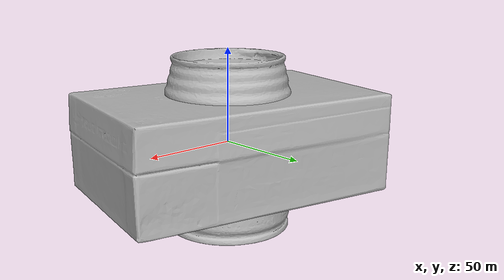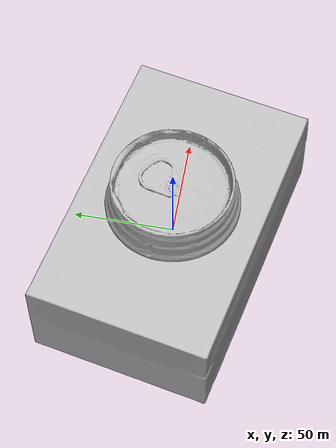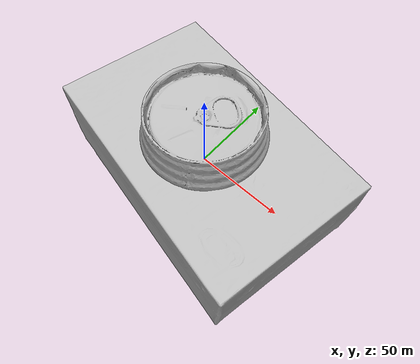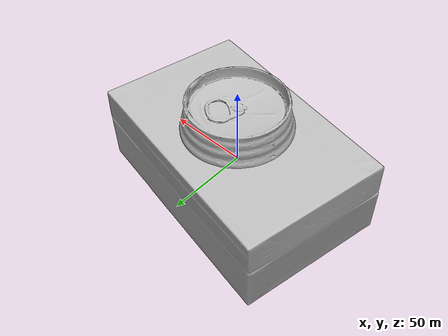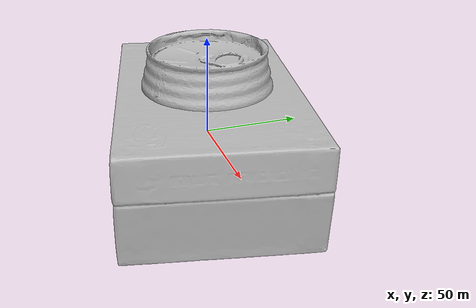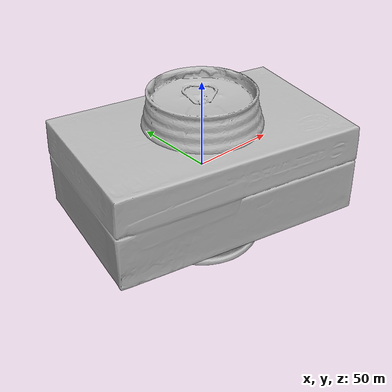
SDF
<?xml version="1.0" ?>
<sdf version="1.4">
  <world name="default">
    <light name="light1" type="point">
      <pose>0 0 1 0 0 0</pose>
      <diffuse>3 3 3 1</diffuse>
      <specular>3 3 3 1</specular>
    </light>
    <light name="light2" type="point">
      <pose>0 0.5 2 0 0 0</pose>
      <diffuse>1 1 1 1</diffuse>
      <specular>1 1 1 1</specular>
    </light>
    <light name="light3" type="point">
      <pose>0 0.5 2 0 0 0</pose>
      <diffuse>3 3 3 1</diffuse>
      <specular>3 3 3 1</specular>
    </light>
    <scene>
      <ambient>0.7 0.7 0.7</ambient>
    </scene>
    <model name="box1">
      <link name="link_box1">
        <collision name="default">
          <geometry>
            <mesh>
              <uri>model://realsense_box/collision_meshes/collision.obj</uri>
              <scale>1.0 1.0 1.0</scale>
            </mesh>
          </geometry>
          <surface>
            <friction>
              <ode>
                <mu>0.5</mu>
                <mu2>0.5</mu2>
              </ode>
            </friction>
            <contact>
              <ode>
                <max_vel>0</max_vel>
                <min_depth>0.0001</min_depth>
                <kp>1e8</kp>
              </ode>
            </contact>
          </surface>
        </collision>
        <visual name="default">
          <geometry>
            <mesh>
              <uri>model://realsense_box/visual_meshes/visual.dae</uri>
              <scale>1.0 1.0 1.0</scale>
            </mesh>
          </geometry>
        </visual>
        <inertial>
          <mass>0.5864310264587402</mass>
          <pose>4.0744838770478964e-05 8.587492629885674e-05 -2.4153792764991522e-05 -0.00012602841398420584 -0.00635893997803049 0.005012323893530406</pose>
          <inertia>
            <ixx>0.00055784633</ixx>
            <iyy>0.0011643406</iyy>
            <izz>0.0014403972</izz>
            <ixy>0</ixy>
            <ixz>0</ixz>
            <iyz>0</iyz>
          </inertia>
        </inertial>
      </link>
      <pose>-0.01939862035214901 0.2791391909122467 0.027316005900502205 -4.978277208081063e-08 -5.747913025883684e-09 2.9302754133178963</pose>
    </model>
    <model name="box2">
      <link name="link_box2">
        <collision name="default">
          <geometry>
            <mesh>
              <uri>model://wooden_puzzle1/collision_meshes/collision.obj</uri>
              <scale>1.0 1.0 1.0</scale>
            </mesh>
          </geometry>
          <surface>
            <friction>
              <ode>
                <mu>0.5</mu>
                <mu2>0.5</mu2>
              </ode>
            </friction>
            <contact>
              <ode>
                <max_vel>0</max_vel>
                <min_depth>0.0001</min_depth>
                <kp>1e8</kp>
              </ode>
            </contact>
          </surface>
        </collision>
        <visual name="default">
          <geometry>
            <mesh>
              <uri>model://wooden_puzzle1/visual_meshes/visual.dae</uri>
              <scale>1.0 1.0 1.0</scale>
            </mesh>
          </geometry>
        </visual>
        <inertial>
          <mass>0.029293930158019066</mass>
          <pose>-0.00017350679263472557 7.972260209498927e-05 -9.191554272547364e-05 -0.07784356807478612 -0.26361316070226715 -0.552870069934309</pose>
          <inertia>
            <ixx>5.5269634e-06</ixx>
            <iyy>5.4205675e-06</iyy>
            <izz>5.4852344e-06</izz>
            <ixy>0</ixy>
            <ixz>0</ixz>
            <iyz>0</iyz>
          </inertia>
        </inertial>
      </link>
      <pose>-0.06030524894595146 -0.06354563683271408 0.016802016645669937 0.010512811085048144 -0.00944929874340968 2.3901217037040037</pose>
    </model>
    <model name="box3">
      <link name="link_box3">
        <collision name="default">
          <geometry>
            <mesh>
              <uri>model://wooden_puzzle2/collision_meshes/collision.obj</uri>
              <scale>1.0 1.0 1.0</scale>
            </mesh>
          </geometry>
          <surface>
            <friction>
              <ode>
                <mu>0.5</mu>
                <mu2>0.5</mu2>
              </ode>
            </friction>
            <contact>
              <ode>
                <max_vel>0</max_vel>
                <min_depth>0.0001</min_depth>
                <kp>1e8</kp>
              </ode>
            </contact>
          </surface>
        </collision>
        <visual name="default">
          <geometry>
            <mesh>
              <uri>model://wooden_puzzle2/visual_meshes/visual.dae</uri>
              <scale>1.0 1.0 1.0</scale>
            </mesh>
          </geometry>
        </visual>
        <inertial>
          <mass>0.046210821717977524</mass>
          <pose>2.7402538762544282e-05 4.9976635636994615e-05 6.587122334167361e-05 -0.19202726218652877 0.6112834530151037 -0.6338736448019666</pose>
          <inertia>
            <ixx>8.590097e-06</ixx>
            <iyy>8.826809e-06</iyy>
            <izz>8.7012395e-06</izz>
            <ixy>0</ixy>
            <ixz>0</ixz>
            <iyz>0</iyz>
          </inertia>
        </inertial>
      </link>
      <pose>-0.048972416669130325 0.020938735455274582 0.016917727887630463 0.020847727172185783 0.0007220935449440105 -0.12661263760894825</pose>
    </model>
    <model name="can1">
      <link name="link_can1">
        <collision name="default">
          <geometry>
            <mesh>
              <uri>model://pepsi/collision_meshes/collision.obj</uri>
              <scale>1.0 1.0 1.0</scale>
            </mesh>
          </geometry>
          <surface>
            <friction>
              <ode>
                <mu>0.5</mu>
                <mu2>0.5</mu2>
              </ode>
            </friction>
            <contact>
              <ode>
                <max_vel>0</max_vel>
                <min_depth>0.0001</min_depth>
                <kp>1e8</kp>
              </ode>
            </contact>
          </surface>
        </collision>
        <visual name="default">
          <geometry>
            <mesh>
              <uri>model://pepsi/visual_meshes/visual.dae</uri>
              <scale>1.0 1.0 1.0</scale>
            </mesh>
          </geometry>
        </visual>
        <inertial>
          <mass>0.38708412647247314</mass>
          <pose>-7.5590331107378e-05 2.9931279641459696e-05 -0.0003384356386959553 -0.0010677624110939459 -0.0021735778616849013 0.5673701652335379</pose>
          <inertia>
            <ixx>0.00077114574</ixx>
            <iyy>0.0007705839</iyy>
            <izz>0.00016412749</izz>
            <ixy>0</ixy>
            <ixz>0</ixz>
            <iyz>0</iyz>
          </inertia>
        </inertial>
      </link>
      <pose>0.26928138732910156 -0.3573780953884125 0.0744962990283966 -1.8230447453751172e-05 2.15111348366781e-06 0.8354192810625405</pose>
    </model>
    <model name="can2">
      <link name="link_can2">
        <collision name="default">
          <geometry>
            <mesh>
              <uri>model://redbull/collision_meshes/collision.obj</uri>
              <scale>1.0 1.0 1.0</scale>
            </mesh>
          </geometry>
          <surface>
            <friction>
              <ode>
                <mu>0.5</mu>
                <mu2>0.5</mu2>
              </ode>
            </friction>
            <contact>
              <ode>
                <max_vel>0</max_vel>
                <min_depth>0.0001</min_depth>
                <kp>1e8</kp>
              </ode>
            </contact>
          </surface>
        </collision>
        <visual name="default">
          <geometry>
            <mesh>
              <uri>model://redbull/visual_meshes/visual.dae</uri>
              <scale>1.0 1.0 1.0</scale>
            </mesh>
          </geometry>
        </visual>
        <inertial>
          <mass>0.22841571271419525</mass>
          <pose>-2.2126563635538332e-05 -0.00012659550702665 -0.0006860988214612007 0.001137008533125708 -0.010800935482360328 0.5858832407094048</pose>
          <inertia>
            <ixx>0.00021475992</ixx>
            <iyy>0.00021494119</iyy>
            <izz>0.00012744407</izz>
            <ixy>0</ixy>
            <ixz>0</ixz>
            <iyz>0</iyz>
          </inertia>
        </inertial>
      </link>
      <pose>-0.02280493639409542 -0.029671020805835724 0.046385638415813446 -0.01048931818087837 0.00726130088678194 2.943375956114238</pose>
    </model>
    <physics type="ode">
      <max_contacts>50</max_contacts>
      <ode>
        <solver>
          <type>quick</type>
          <iters>75</iters>
        </solver>
        <constraints>
          <contact_max_correcting_vel>0</contact_max_correcting_vel>
          <contact_surface_layer>0</contact_surface_layer>
        </constraints>
      </ode>
    </physics>
  </world>
</sdf>
